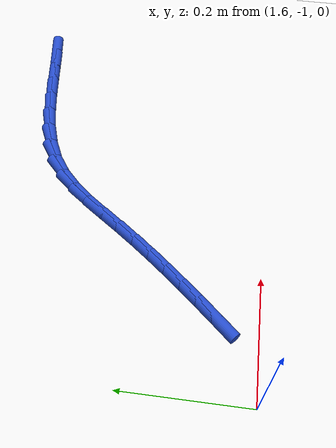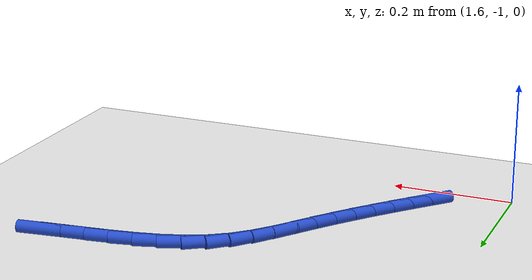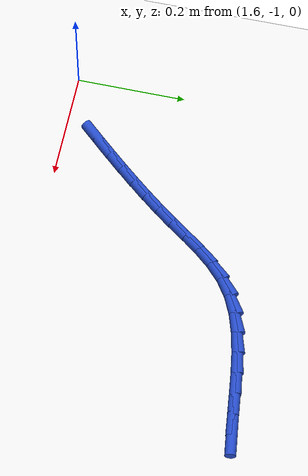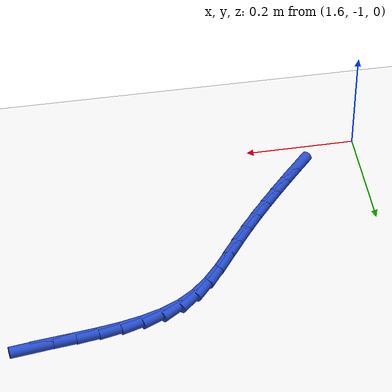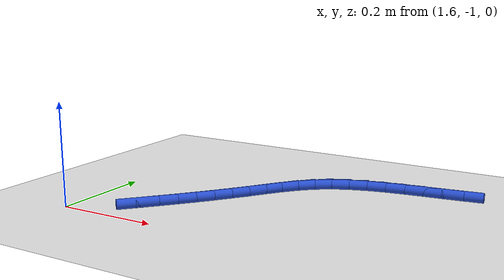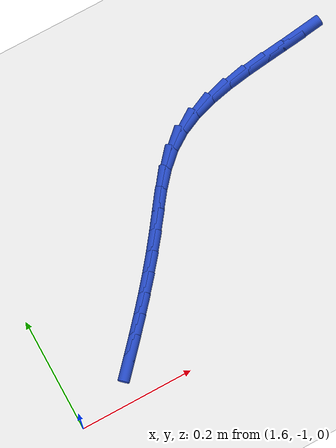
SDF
<sdf version="1.6">
 <world name="default">
  <model name="ground_plane">
   <static>1</static>
   <link name="link">
    <collision name="collision">
     <geometry><plane><normal>0 0 1</normal><size>100 100</size></plane></geometry>
     <surface><friction><ode><mu>100</mu><mu2>50</mu2></ode></friction></surface>
    </collision>
    <visual name="visual">
     <cast_shadows>0</cast_shadows>
     <geometry><plane><normal>0 0 1</normal><size>100 100</size></plane></geometry>
     <material>
      <script><uri>file://media/materials/scripts/gazebo.material</uri><name>Gazebo/WhiteGlow</name></script>
     </material>
    </visual>
   </link>
  </model>
  <model name="line">
   <link name="link_129">
    <pose>2.2368076837283977 -0.5869834596362549 0.01 0 1.57 0.12988507355714196</pose>
    <collision name="collision">
     <geometry><cylinder><radius>0.01</radius><length>0.08</length></cylinder></geometry>
    </collision>
    <visual name="visual">
     <material>
      <script><name>Gazebo/Blue</name><uri>file://media/materials/scripts/gazebo.material</uri></script>
     </material>
     <geometry><cylinder><radius>0.01</radius><length>0.08</length></cylinder></geometry>
    </visual>
   </link>
   <link name="link_130">
    <pose>2.20055768798994 -0.5917184496296386 0.01 0 1.57 0.1127427198314231</pose>
    <collision name="collision">
     <geometry><cylinder><radius>0.01</radius><length>0.08</length></cylinder></geometry>
    </collision>
    <visual name="visual">
     <material>
      <script><name>Gazebo/Blue</name><uri>file://media/materials/scripts/gazebo.material</uri></script>
     </material>
     <geometry><cylinder><radius>0.01</radius><length>0.08</length></cylinder></geometry>
    </visual>
   </link>
   <link name="link_131">
    <pose>2.162816855974591 -0.5959915741564423 0.01 0 1.57 0.12119476530746515</pose>
    <collision name="collision">
     <geometry><cylinder><radius>0.01</radius><length>0.08</length></cylinder></geometry>
    </collision>
    <visual name="visual">
     <material>
      <script><name>Gazebo/Blue</name><uri>file://media/materials/scripts/gazebo.material</uri></script>
     </material>
     <geometry><cylinder><radius>0.01</radius><length>0.08</length></cylinder></geometry>
    </visual>
   </link>
   <link name="link_132">
    <pose>2.124411773084041 -0.6006689925273936 0.01 0 1.57 0.15429323358007688</pose>
    <collision name="collision">
     <geometry><cylinder><radius>0.01</radius><length>0.08</length></cylinder></geometry>
    </collision>
    <visual name="visual">
     <material>
      <script><name>Gazebo/Blue</name><uri>file://media/materials/scripts/gazebo.material</uri></script>
     </material>
     <geometry><cylinder><radius>0.01</radius><length>0.08</length></cylinder></geometry>
    </visual>
   </link>
   <link name="link_133">
    <pose>2.086169024719977 -0.606616864053221 0.01 0 1.57 0.21369734385185057</pose>
    <collision name="collision">
     <geometry><cylinder><radius>0.01</radius><length>0.08</length></cylinder></geometry>
    </collision>
    <visual name="visual">
     <material>
      <script><name>Gazebo/Blue</name><uri>file://media/materials/scripts/gazebo.material</uri></script>
     </material>
     <geometry><cylinder><radius>0.01</radius><length>0.08</length></cylinder></geometry>
    </visual>
   </link>
   <link name="link_134">
    <pose>2.0489151962840877 -0.6147013480446524 0.01 0 1.57 0.3032133717533773</pose>
    <collision name="collision">
     <geometry><cylinder><radius>0.01</radius><length>0.08</length></cylinder></geometry>
    </collision>
    <visual name="visual">
     <material>
      <script><name>Gazebo/Blue</name><uri>file://media/materials/scripts/gazebo.material</uri></script>
     </material>
     <geometry><cylinder><radius>0.01</radius><length>0.08</length></cylinder></geometry>
    </visual>
   </link>
   <link name="link_135">
    <pose>2.0134768731780603 -0.6257886038124163 0.01 0 1.57 0.4278602016885028</pose>
    <collision name="collision">
     <geometry><cylinder><radius>0.01</radius><length>0.08</length></cylinder></geometry>
    </collision>
    <visual name="visual">
     <material>
      <script><name>Gazebo/Blue</name><uri>file://media/materials/scripts/gazebo.material</uri></script>
     </material>
     <geometry><cylinder><radius>0.01</radius><length>0.08</length></cylinder></geometry>
    </visual>
   </link>
   <link name="link_136">
    <pose>1.980680640803584 -0.6407447906672404 0.01 0 1.57 0.5897911242414198</pose>
    <collision name="collision">
     <geometry><cylinder><radius>0.01</radius><length>0.08</length></cylinder></geometry>
    </collision>
    <visual name="visual">
     <material>
      <script><name>Gazebo/Blue</name><uri>file://media/materials/scripts/gazebo.material</uri></script>
     </material>
     <geometry><cylinder><radius>0.01</radius><length>0.08</length></cylinder></geometry>
    </visual>
   </link>
   <link name="link_137">
    <pose>1.9513195854714858 -0.6603947700878876 0.01 0 1.57 0.7486129219888957</pose>
    <collision name="collision">
     <geometry><cylinder><radius>0.01</radius><length>0.08</length></cylinder></geometry>
    </collision>
    <visual name="visual">
     <material>
      <script><name>Gazebo/Blue</name><uri>file://media/materials/scripts/gazebo.material</uri></script>
     </material>
     <geometry><cylinder><radius>0.01</radius><length>0.08</length></cylinder></geometry>
    </visual>
   </link>
   <link name="link_138">
    <pose>1.9253448866364975 -0.6845254969419734 0.01 0 1.57 0.8597903012229646</pose>
    <collision name="collision">
     <geometry><cylinder><radius>0.01</radius><length>0.08</length></cylinder></geometry>
    </collision>
    <visual name="visual">
     <material>
      <script><name>Gazebo/Blue</name><uri>file://media/materials/scripts/gazebo.material</uri></script>
     </material>
     <geometry><cylinder><radius>0.01</radius><length>0.08</length></cylinder></geometry>
    </visual>
   </link>
   <link name="link_139">
    <pose>1.9018241123569422 -0.7118346059384975 0.01 0 1.57 0.9231131110633668</pose>
    <collision name="collision">
     <geometry><cylinder><radius>0.01</radius><length>0.08</length></cylinder></geometry>
    </collision>
    <visual name="visual">
     <material>
      <script><name>Gazebo/Blue</name><uri>file://media/materials/scripts/gazebo.material</uri></script>
     </material>
     <geometry><cylinder><radius>0.01</radius><length>0.08</length></cylinder></geometry>
    </visual>
   </link>
   <link name="link_140">
    <pose>1.8797829845797716 -0.740968143709546 0.01 0 1.57 0.9418770368295714</pose>
    <collision name="collision">
     <geometry><cylinder><radius>0.01</radius><length>0.08</length></cylinder></geometry>
    </collision>
    <visual name="visual">
     <material>
      <script><name>Gazebo/Blue</name><uri>file://media/materials/scripts/gazebo.material</uri></script>
     </material>
     <geometry><cylinder><radius>0.01</radius><length>0.08</length></cylinder></geometry>
    </visual>
   </link>
   <link name="link_141">
    <pose>1.858247225251935 -0.7705721568872067 0.01 0 1.57 0.9240286675941639</pose>
    <collision name="collision">
     <geometry><cylinder><radius>0.01</radius><length>0.08</length></cylinder></geometry>
    </collision>
    <visual name="visual">
     <material>
      <script><name>Gazebo/Blue</name><uri>file://media/materials/scripts/gazebo.material</uri></script>
     </material>
     <geometry><cylinder><radius>0.01</radius><length>0.08</length></cylinder></geometry>
    </visual>
   </link>
   <link name="link_142">
    <pose>1.8363918070159184 -0.7995152631866923 0.01 0 1.57 0.9002135219374559</pose>
    <collision name="collision">
     <geometry><cylinder><radius>0.01</radius><length>0.08</length></cylinder></geometry>
    </collision>
    <visual name="visual">
     <material>
      <script><name>Gazebo/Blue</name><uri>file://media/materials/scripts/gazebo.material</uri></script>
     </material>
     <geometry><cylinder><radius>0.01</radius><length>0.08</length></cylinder></geometry>
    </visual>
   </link>
   <link name="link_143">
    <pose>1.814062374197183 -0.8276662238894916 0.01 0 1.57 0.8793743622633522</pose>
    <collision name="collision">
     <geometry><cylinder><radius>0.01</radius><length>0.08</length></cylinder></geometry>
    </collision>
    <visual name="visual">
     <material>
      <script><name>Gazebo/Blue</name><uri>file://media/materials/scripts/gazebo.material</uri></script>
     </material>
     <geometry><cylinder><radius>0.01</radius><length>0.08</length></cylinder></geometry>
    </visual>
   </link>
   <link name="link_144">
    <pose>1.7912928736386322 -0.855174607646942 0.01 0 1.57 0.8617527556007103</pose>
    <collision name="collision">
     <geometry><cylinder><radius>0.01</radius><length>0.08</length></cylinder></geometry>
    </collision>
    <visual name="visual">
     <material>
      <script><name>Gazebo/Blue</name><uri>file://media/materials/scripts/gazebo.material</uri></script>
     </material>
     <geometry><cylinder><radius>0.01</radius><length>0.08</length></cylinder></geometry>
    </visual>
   </link>
   <link name="link_145">
    <pose>1.7681172619623318 -0.8821899976936265 0.01 0 1.57 0.8475289498414398</pose>
    <collision name="collision">
     <geometry><cylinder><radius>0.01</radius><length>0.08</length></cylinder></geometry>
    </collision>
    <visual name="visual">
     <material>
      <script><name>Gazebo/Blue</name><uri>file://media/materials/scripts/gazebo.material</uri></script>
     </material>
     <geometry><cylinder><radius>0.01</radius><length>0.08</length></cylinder></geometry>
    </visual>
   </link>
   <link name="link_146">
    <pose>1.7445694957903473 -0.9088619772641272 0.01 0 1.57 0.8368217394061512</pose>
    <collision name="collision">
     <geometry><cylinder><radius>0.01</radius><length>0.08</length></cylinder></geometry>
    </collision>
    <visual name="visual">
     <material>
      <script><name>Gazebo/Blue</name><uri>file://media/materials/scripts/gazebo.material</uri></script>
     </material>
     <geometry><cylinder><radius>0.01</radius><length>0.08</length></cylinder></geometry>
    </visual>
   </link>
   <link name="link_147">
    <pose>1.7206835317447444 -0.9353401295930265 0.01 0 1.57 0.8296900129586532</pose>
    <collision name="collision">
     <geometry><cylinder><radius>0.01</radius><length>0.08</length></cylinder></geometry>
    </collision>
    <visual name="visual">
     <material>
      <script><name>Gazebo/Blue</name><uri>file://media/materials/scripts/gazebo.material</uri></script>
     </material>
     <geometry><cylinder><radius>0.01</radius><length>0.08</length></cylinder></geometry>
    </visual>
   </link>
  </model>
 </world>
</sdf>
